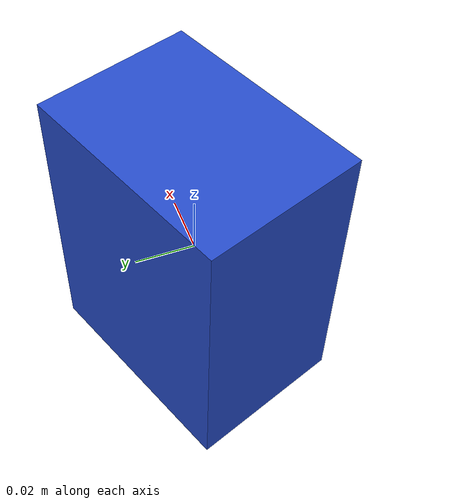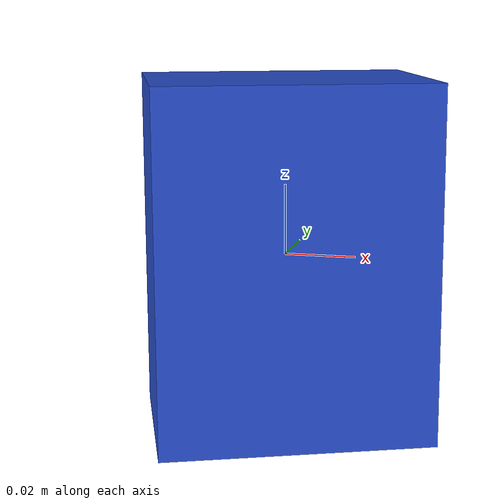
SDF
<sdf version="1.6"><model name="model_6"><static>true</static><link name="link"><pose>0 0 0 0 0 0.3637607944702522</pose><collision name="collision"><geometry><box><size>0.0769372319966652 0.05465466650130412 0.1</size></box></geometry></collision><visual name="visual"><geometry><box><size>0.0769372319966652 0.05465466650130412 0.1</size></box></geometry><material><script><name>Gazebo/Blue</name><uri>file://media/materials/scripts/gazebo.material</uri></script></material></visual></link></model></sdf>
